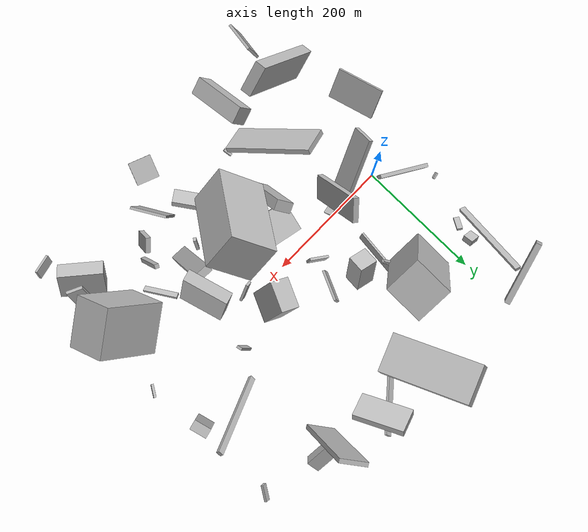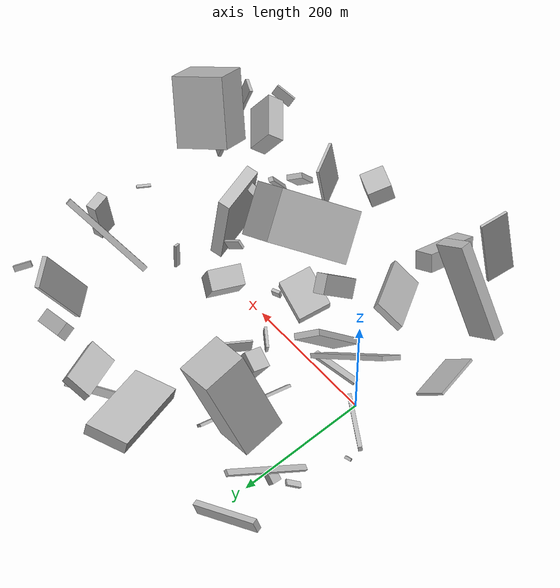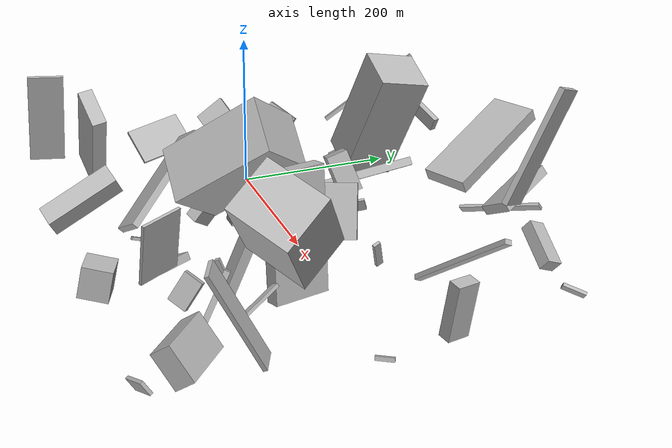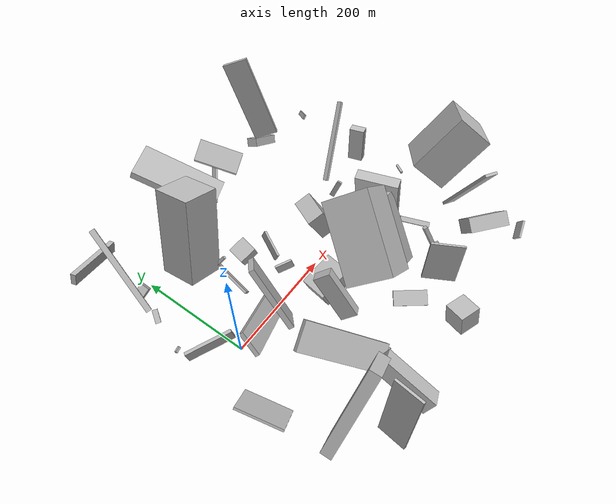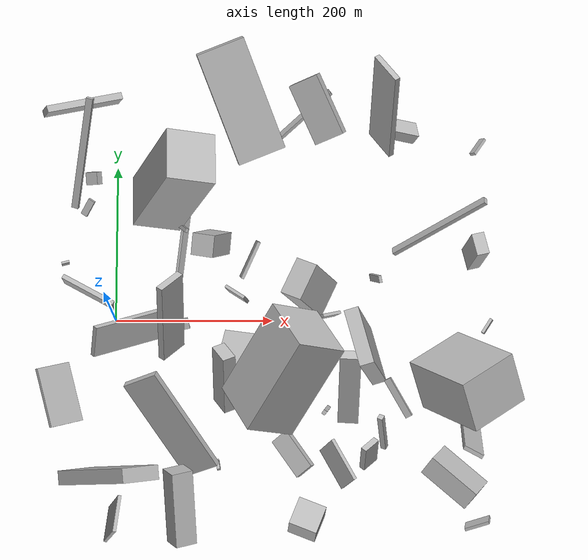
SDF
<sdf version="1.6">
 <world name="default">
  <scene>
   <sky><clouds><speed>12</speed></clouds></sky>
   <ambient>0.4 0.4 0.4 1</ambient>
   <background>0.7 0.7 0.7 1</background>
   <shadows>1</shadows>
  </scene>
  <gravity>0 0 -9.8066</gravity>
  <magnetic_field>6e-06 2.3e-05 -4.2e-05</magnetic_field>
  <physics default="0" name="default_physics" type="ode">
   <ode>
    <solver>
     <type>quick</type>
     <iters>10</iters>
     <sor>1.0</sor>
     <use_dynamic_moi_rescaling>0</use_dynamic_moi_rescaling>
    </solver>
    <constraints>
     <cfm>0</cfm>
     <erp>0.2</erp>
     <contact_max_correcting_vel>100</contact_max_correcting_vel>
     <contact_surface_layer>0.001</contact_surface_layer>
    </constraints>
   </ode>
   <max_step_size>0.004</max_step_size>
   <real_time_factor>1</real_time_factor>
   <real_time_update_rate>250</real_time_update_rate>
  </physics>
  <light name="sun" type="directional">
   <pose>0 0 10 0 0 0</pose>
   <diffuse>0.8 0.8 0.8 1</diffuse>
   <specular>0.2 0.2 0.2 1</specular>
   <attenuation>
    <range>1000</range>
    <constant>0.9</constant>
    <linear>0.01</linear>
    <quadratic>0.001</quadratic>
   </attenuation>
   <direction>-0.5 0.1 -0.9</direction>
  </light>
  <model name="building_1">
   <static>0</static>
   <pose>133.21272379555614 -72.60829885569004 51.48282670305865 0.94685586024266 0.3099676115791375 0.4106926930571434</pose>
   <link name="link">
    <gravity>0</gravity>
    <pose>0 0 14.5 0 0 0</pose>
    <collision name="collision"><geometry><box><size>17 88 29</size></box></geometry></collision>
    <visual name="visual">
     <cast_shadows>0</cast_shadows>
     <geometry><box><size>17 88 29</size></box></geometry>
     <material>
      <script>
       <uri>model://HANNAS_wall/materials/scripts</uri>
       <uri>model://HANNAS_wall/materials/textures</uri>
       <name>vrc/HANNAS_wall</name>
      </script>
     </material>
    </visual>
   </link>
  </model>
  <model name="building_2">
   <static>0</static>
   <pose>274.11569878097856 229.62726697184812 43.9098158511957 1.0166485205945737 -0.9874895511209203 -2.214056862766435</pose>
   <link name="link">
    <gravity>0</gravity>
    <pose>0 0 41.0 0 0 0</pose>
    <collision name="collision"><geometry><box><size>13 41 82</size></box></geometry></collision>
    <visual name="visual">
     <cast_shadows>0</cast_shadows>
     <geometry><box><size>13 41 82</size></box></geometry>
     <material>
      <script>
       <uri>model://HANNAS_wall/materials/scripts</uri>
       <uri>model://HANNAS_wall/materials/textures</uri>
       <name>vrc/HANNAS_wall</name>
      </script>
     </material>
    </visual>
   </link>
  </model>
  <model name="building_3">
   <static>0</static>
   <pose>266.04592356529054 -119.91651770280873 22.960512457103732 -0.11245648489854236 -1.2004729524846327 -2.0794519067387065</pose>
   <link name="link">
    <gravity>0</gravity>
    <pose>0 0 3.0 0 0 0</pose>
    <collision name="collision"><geometry><box><size>30 5 6</size></box></geometry></collision>
    <visual name="visual">
     <cast_shadows>0</cast_shadows>
     <geometry><box><size>30 5 6</size></box></geometry>
     <material>
      <script>
       <uri>model://HANNAS_wall/materials/scripts</uri>
       <uri>model://HANNAS_wall/materials/textures</uri>
       <name>vrc/HANNAS_wall</name>
      </script>
     </material>
    </visual>
   </link>
  </model>
  <model name="building_4">
   <static>0</static>
   <pose>-24.895404991316486 178.30561898894155 39.18046094572462 0.3518544050288584 -0.5846617767859117 -0.12815221044029654</pose>
   <link name="link">
    <gravity>0</gravity>
    <pose>0 0 5.0 0 0 0</pose>
    <collision name="collision"><geometry><box><size>18 16 10</size></box></geometry></collision>
    <visual name="visual">
     <cast_shadows>0</cast_shadows>
     <geometry><box><size>18 16 10</size></box></geometry>
     <material>
      <script>
       <uri>model://HANNAS_wall/materials/scripts</uri>
       <uri>model://HANNAS_wall/materials/textures</uri>
       <name>vrc/HANNAS_wall</name>
      </script>
     </material>
    </visual>
   </link>
  </model>
  <model name="building_5">
   <static>0</static>
   <pose>249.8623569323382 -238.77978267889736 24.613110011344812 1.3598794423644247 -0.044423129267968854 -0.37367421825245417</pose>
   <link name="link">
    <gravity>0</gravity>
    <pose>0 0 18.0 0 0 0</pose>
    <collision name="collision"><geometry><box><size>36 39 36</size></box></geometry></collision>
    <visual name="visual">
     <cast_shadows>0</cast_shadows>
     <geometry><box><size>36 39 36</size></box></geometry>
     <material>
      <script>
       <uri>model://HANNAS_wall/materials/scripts</uri>
       <uri>model://HANNAS_wall/materials/textures</uri>
       <name>vrc/HANNAS_wall</name>
      </script>
     </material>
    </visual>
   </link>
  </model>
  <model name="building_6">
   <static>0</static>
   <pose>455.4331705872142 209.8351635518881 40.04175155078613 -1.9632661994112903 0.5604833344140213 -0.7991754585519574</pose>
   <link name="link">
    <gravity>0</gravity>
    <pose>0 0 13.5 0 0 0</pose>
    <collision name="collision"><geometry><box><size>4 9 27</size></box></geometry></collision>
    <visual name="visual">
     <cast_shadows>0</cast_shadows>
     <geometry><box><size>4 9 27</size></box></geometry>
     <material>
      <script>
       <uri>model://HANNAS_wall/materials/scripts</uri>
       <uri>model://HANNAS_wall/materials/textures</uri>
       <name>vrc/HANNAS_wall</name>
      </script>
     </material>
    </visual>
   </link>
  </model>
  <model name="building_7">
   <static>0</static>
   <pose>235.78316788409631 10.448456748071237 62.22995655444545 1.5181267529020512 -1.11741165818731 2.749829916323924</pose>
   <link name="link">
    <gravity>0</gravity>
    <pose>0 0 24.0 0 0 0</pose>
    <collision name="collision"><geometry><box><size>67 30 48</size></box></geometry></collision>
    <visual name="visual">
     <cast_shadows>0</cast_shadows>
     <geometry><box><size>67 30 48</size></box></geometry>
     <material>
      <script>
       <uri>model://HANNAS_wall/materials/scripts</uri>
       <uri>model://HANNAS_wall/materials/textures</uri>
       <name>vrc/HANNAS_wall</name>
      </script>
     </material>
    </visual>
   </link>
  </model>
  <model name="building_8">
   <static>0</static>
   <pose>308.2952524903221 -96.40395004174822 71.61885104014831 1.6028856389273964 -0.41569108895059476 -1.6382814103078025</pose>
   <link name="link">
    <gravity>0</gravity>
    <pose>0 0 13.0 0 0 0</pose>
    <collision name="collision"><geometry><box><size>12 150 26</size></box></geometry></collision>
    <visual name="visual">
     <cast_shadows>0</cast_shadows>
     <geometry><box><size>12 150 26</size></box></geometry>
     <material>
      <script>
       <uri>model://HANNAS_wall/materials/scripts</uri>
       <uri>model://HANNAS_wall/materials/textures</uri>
       <name>vrc/HANNAS_wall</name>
      </script>
     </material>
    </visual>
   </link>
  </model>
  <model name="building_9">
   <static>0</static>
   <pose>-47.76156526672365 -95.41933585272469 34.283986708271904 0.19167401745038357 -0.8558008041303942 0.10202847238101537</pose>
   <link name="link">
    <gravity>0</gravity>
    <pose>0 0 25.0 0 0 0</pose>
    <collision name="collision"><geometry><box><size>4 75 50</size></box></geometry></collision>
    <visual name="visual">
     <cast_shadows>0</cast_shadows>
     <geometry><box><size>4 75 50</size></box></geometry>
     <material>
      <script>
       <uri>model://HANNAS_wall/materials/scripts</uri>
       <uri>model://HANNAS_wall/materials/textures</uri>
       <name>vrc/HANNAS_wall</name>
      </script>
     </material>
    </visual>
   </link>
  </model>
  <model name="building_10">
   <static>0</static>
   <pose>136.35339672130436 87.96266365665211 54.596652731162955 2.3592538560476153 -1.0910462099409288 -2.5177361705192056</pose>
   <link name="link">
    <gravity>0</gravity>
    <pose>0 0 15.0 0 0 0</pose>
    <collision name="collision"><geometry><box><size>54 28 30</size></box></geometry></collision>
    <visual name="visual">
     <cast_shadows>0</cast_shadows>
     <geometry><box><size>54 28 30</size></box></geometry>
     <material>
      <script>
       <uri>model://HANNAS_wall/materials/scripts</uri>
       <uri>model://HANNAS_wall/materials/textures</uri>
       <name>vrc/HANNAS_wall</name>
      </script>
     </material>
    </visual>
   </link>
  </model>
  <model name="building_11">
   <static>0</static>
   <pose>228.01738519784098 -170.8024354499402 14.855570301464109 -0.09683661114211456 -0.4827499898043357 0.6529324254956526</pose>
   <link name="link">
    <gravity>0</gravity>
    <pose>0 0 5.0 0 0 0</pose>
    <collision name="collision"><geometry><box><size>25 55 10</size></box></geometry></collision>
    <visual name="visual">
     <cast_shadows>0</cast_shadows>
     <geometry><box><size>25 55 10</size></box></geometry>
     <material>
      <script>
       <uri>model://HANNAS_wall/materials/scripts</uri>
       <uri>model://HANNAS_wall/materials/textures</uri>
       <name>vrc/HANNAS_wall</name>
      </script>
     </material>
    </visual>
   </link>
  </model>
  <model name="building_12">
   <static>0</static>
   <pose>336.2383802907886 -149.16767961036535 35.21151191545883 2.4609786540569654 -1.0669603923838096 1.7933198758681819</pose>
   <link name="link">
    <gravity>0</gravity>
    <pose>0 0 3.5 0 0 0</pose>
    <collision name="collision"><geometry><box><size>65 7 7</size></box></geometry></collision>
    <visual name="visual">
     <cast_shadows>0</cast_shadows>
     <geometry><box><size>65 7 7</size></box></geometry>
     <material>
      <script>
       <uri>model://HANNAS_wall/materials/scripts</uri>
       <uri>model://HANNAS_wall/materials/textures</uri>
       <name>vrc/HANNAS_wall</name>
      </script>
     </material>
    </visual>
   </link>
  </model>
  <model name="building_13">
   <static>0</static>
   <pose>85.76590258022085 3.923338607886352 69.59024546770176 1.0492583655565095 -0.38961575591352743 -0.6013533871746652</pose>
   <link name="link">
    <gravity>0</gravity>
    <pose>0 0 19.0 0 0 0</pose>
    <collision name="collision"><geometry><box><size>9 120 38</size></box></geometry></collision>
    <visual name="visual">
     <cast_shadows>0</cast_shadows>
     <geometry><box><size>9 120 38</size></box></geometry>
     <material>
      <script>
       <uri>model://HANNAS_wall/materials/scripts</uri>
       <uri>model://HANNAS_wall/materials/textures</uri>
       <name>vrc/HANNAS_wall</name>
      </script>
     </material>
    </visual>
   </link>
  </model>
  <model name="building_14">
   <static>0</static>
   <pose>409.4221068392276 105.19571424915148 68.2442944644551 -2.121861452540082 -0.662266959586186 0.39827850830056116</pose>
   <link name="link">
    <gravity>0</gravity>
    <pose>0 0 4.5 0 0 0</pose>
    <collision name="collision"><geometry><box><size>150 6 9</size></box></geometry></collision>
    <visual name="visual">
     <cast_shadows>0</cast_shadows>
     <geometry><box><size>150 6 9</size></box></geometry>
     <material>
      <script>
       <uri>model://HANNAS_wall/materials/scripts</uri>
       <uri>model://HANNAS_wall/materials/textures</uri>
       <name>vrc/HANNAS_wall</name>
      </script>
     </material>
    </visual>
   </link>
  </model>
  <model name="building_15">
   <static>0</static>
   <pose>357.4865096343658 -103.70542092316089 34.08362692330125 2.6477715439866483 -0.2469757244915664 2.113253534956214</pose>
   <link name="link">
    <gravity>0</gravity>
    <pose>0 0 2.0 0 0 0</pose>
    <collision name="collision"><geometry><box><size>55 9 4</size></box></geometry></collision>
    <visual name="visual">
     <cast_shadows>0</cast_shadows>
     <geometry><box><size>55 9 4</size></box></geometry>
     <material>
      <script>
       <uri>model://HANNAS_wall/materials/scripts</uri>
       <uri>model://HANNAS_wall/materials/textures</uri>
       <name>vrc/HANNAS_wall</name>
      </script>
     </material>
    </visual>
   </link>
  </model>
  <model name="building_16">
   <static>0</static>
   <pose>172.3643186248143 -26.00800410497003 33.29549879215835 -1.0780704962869856 -1.2083508712629198 2.4388553197419642</pose>
   <link name="link">
    <gravity>0</gravity>
    <pose>0 0 24.5 0 0 0</pose>
    <collision name="collision"><geometry><box><size>29 60 49</size></box></geometry></collision>
    <visual name="visual">
     <cast_shadows>0</cast_shadows>
     <geometry><box><size>29 60 49</size></box></geometry>
     <material>
      <script>
       <uri>model://HANNAS_wall/materials/scripts</uri>
       <uri>model://HANNAS_wall/materials/textures</uri>
       <name>vrc/HANNAS_wall</name>
      </script>
     </material>
    </visual>
   </link>
  </model>
  <model name="building_17">
   <static>0</static>
   <pose>92.85107333112602 127.23258439349536 20.49524042903421 0.22468578743578263 -0.5860112712187017 -0.2538476416880733</pose>
   <link name="link">
    <gravity>0</gravity>
    <pose>0 0 5.5 0 0 0</pose>
    <collision name="collision"><geometry><box><size>4 150 11</size></box></geometry></collision>
    <visual name="visual">
     <cast_shadows>0</cast_shadows>
     <geometry><box><size>4 150 11</size></box></geometry>
     <material>
      <script>
       <uri>model://HANNAS_wall/materials/scripts</uri>
       <uri>model://HANNAS_wall/materials/textures</uri>
       <name>vrc/HANNAS_wall</name>
      </script>
     </material>
    </visual>
   </link>
  </model>
  <model name="building_18">
   <static>0</static>
   <pose>79.62795366771573 -235.62164085026694 39.81913883712918 0.4603530240721446 -0.46284443428735983 1.6236272266281724</pose>
   <link name="link">
    <gravity>0</gravity>
    <pose>0 0 13.5 0 0 0</pose>
    <collision name="collision"><geometry><box><size>96 28 27</size></box></geometry></collision>
    <visual name="visual">
     <cast_shadows>0</cast_shadows>
     <geometry><box><size>96 28 27</size></box></geometry>
     <material>
      <script>
       <uri>model://HANNAS_wall/materials/scripts</uri>
       <uri>model://HANNAS_wall/materials/textures</uri>
       <name>vrc/HANNAS_wall</name>
      </script>
     </material>
    </visual>
   </link>
  </model>
  <model name="building_19">
   <static>0</static>
   <pose>456.8840674537515 -254.948231299063 18.64847911725089 0.3796735886482179 0.44096466251183686 -1.1280039485036908</pose>
   <link name="link">
    <gravity>0</gravity>
    <pose>0 0 8.5 0 0 0</pose>
    <collision name="collision"><geometry><box><size>4 32 17</size></box></geometry></collision>
    <visual name="visual">
     <cast_shadows>0</cast_shadows>
     <geometry><box><size>4 32 17</size></box></geometry>
     <material>
      <script>
       <uri>model://HANNAS_wall/materials/scripts</uri>
       <uri>model://HANNAS_wall/materials/textures</uri>
       <name>vrc/HANNAS_wall</name>
      </script>
     </material>
    </visual>
   </link>
  </model>
  <model name="building_20">
   <static>0</static>
   <pose>185.89884533600485 206.4683649976685 46.5799420111494 0.08855787961258046 -1.1475163391973302 -1.2723103623505068</pose>
   <link name="link">
    <gravity>0</gravity>
    <pose>0 0 75.0 0 0 0</pose>
    <collision name="collision"><geometry><box><size>17 63 150</size></box></geometry></collision>
    <visual name="visual">
     <cast_shadows>0</cast_shadows>
     <geometry><box><size>17 63 150</size></box></geometry>
     <material>
      <script>
       <uri>model://HANNAS_wall/materials/scripts</uri>
       <uri>model://HANNAS_wall/materials/textures</uri>
       <name>vrc/HANNAS_wall</name>
      </script>
     </material>
    </visual>
   </link>
  </model>
  <model name="building_21">
   <static>0</static>
   <pose>-32.55437228695615 156.1613781964105 9.259815647028507 -2.114468800472215 0.018011975117221926 2.5453544710303406</pose>
   <link name="link">
    <gravity>0</gravity>
    <pose>0 0 11.5 0 0 0</pose>
    <collision name="collision"><geometry><box><size>9 4 23</size></box></geometry></collision>
    <visual name="visual">
     <cast_shadows>0</cast_shadows>
     <geometry><box><size>9 4 23</size></box></geometry>
     <material>
      <script>
       <uri>model://HANNAS_wall/materials/scripts</uri>
       <uri>model://HANNAS_wall/materials/textures</uri>
       <name>vrc/HANNAS_wall</name>
      </script>
     </material>
    </visual>
   </link>
  </model>
  <model name="building_22">
   <static>0</static>
   <pose>460.66428610319616 70.08180272173723 39.62755168351636 -2.004036201067158 -1.4478040806707562 0.6737938088688296</pose>
   <link name="link">
    <gravity>0</gravity>
    <pose>0 0 14.0 0 0 0</pose>
    <collision name="collision"><geometry><box><size>69 16 28</size></box></geometry></collision>
    <visual name="visual">
     <cast_shadows>0</cast_shadows>
     <geometry><box><size>69 16 28</size></box></geometry>
     <material>
      <script>
       <uri>model://HANNAS_wall/materials/scripts</uri>
       <uri>model://HANNAS_wall/materials/textures</uri>
       <name>vrc/HANNAS_wall</name>
      </script>
     </material>
    </visual>
   </link>
  </model>
  <model name="building_23">
   <static>0</static>
   <pose>181.11472922786925 -128.64925995860668 97.12582609884721 0.767403946241375 -0.6723402820700808 3.118668621846242</pose>
   <link name="link">
    <gravity>0</gravity>
    <pose>0 0 67.0 0 0 0</pose>
    <collision name="collision"><geometry><box><size>69 77 134</size></box></geometry></collision>
    <visual name="visual">
     <cast_shadows>0</cast_shadows>
     <geometry><box><size>69 77 134</size></box></geometry>
     <material>
      <script>
       <uri>model://HANNAS_wall/materials/scripts</uri>
       <uri>model://HANNAS_wall/materials/textures</uri>
       <name>vrc/HANNAS_wall</name>
      </script>
     </material>
    </visual>
   </link>
  </model>
  <model name="building_24">
   <static>0</static>
   <pose>-1.595076662481027 -197.48970867779028 92.85634574805233 1.8113634352547467 -0.9379900284139846 -0.10573860897272214</pose>
   <link name="link">
    <gravity>0</gravity>
    <pose>0 0 9.0 0 0 0</pose>
    <collision name="collision"><geometry><box><size>150 51 18</size></box></geometry></collision>
    <visual name="visual">
     <cast_shadows>0</cast_shadows>
     <geometry><box><size>150 51 18</size></box></geometry>
     <material>
      <script>
       <uri>model://HANNAS_wall/materials/scripts</uri>
       <uri>model://HANNAS_wall/materials/textures</uri>
       <name>vrc/HANNAS_wall</name>
      </script>
     </material>
    </visual>
   </link>
  </model>
  <model name="building_25">
   <static>0</static>
   <pose>404.57341542363713 -80.32248885722092 121.1046841952957 0.6619286340431669 0.31428043113428533 0.5914555950769066</pose>
   <link name="link">
    <gravity>0</gravity>
    <pose>0 0 52.0 0 0 0</pose>
    <collision name="collision"><geometry><box><size>77 65 104</size></box></geometry></collision>
    <visual name="visual">
     <cast_shadows>0</cast_shadows>
     <geometry><box><size>77 65 104</size></box></geometry>
     <material>
      <script>
       <uri>model://HANNAS_wall/materials/scripts</uri>
       <uri>model://HANNAS_wall/materials/textures</uri>
       <name>vrc/HANNAS_wall</name>
      </script>
     </material>
    </visual>
   </link>
  </model>
  <model name="building_26">
   <static>0</static>
   <pose>133.7185241833065 -184.52896576157104 9.485227705008182 1.999093058112063 1.1416633287196842 -0.9300179584350898</pose>
   <link name="link">
    <gravity>0</gravity>
    <pose>0 0 2.0 0 0 0</pose>
    <collision name="collision"><geometry><box><size>4 14 4</size></box></geometry></collision>
    <visual name="visual">
     <cast_shadows>0</cast_shadows>
     <geometry><box><size>4 14 4</size></box></geometry>
     <material>
      <script>
       <uri>model://HANNAS_wall/materials/scripts</uri>
       <uri>model://HANNAS_wall/materials/textures</uri>
       <name>vrc/HANNAS_wall</name>
      </script>
     </material>
    </visual>
   </link>
  </model>
  <model name="building_27">
   <static>0</static>
   <pose>75.88177323057802 192.11399463065732 96.86561029272515 1.0367157824247666 -1.183648739250881 0.5186581388770877</pose>
   <link name="link">
    <gravity>0</gravity>
    <pose>0 0 33.0 0 0 0</pose>
    <collision name="collision"><geometry><box><size>150 62 66</size></box></geometry></collision>
    <visual name="visual">
     <cast_shadows>0</cast_shadows>
     <geometry><box><size>150 62 66</size></box></geometry>
     <material>
      <script>
       <uri>model://HANNAS_wall/materials/scripts</uri>
       <uri>model://HANNAS_wall/materials/textures</uri>
       <name>vrc/HANNAS_wall</name>
      </script>
     </material>
    </visual>
   </link>
  </model>
  <model name="building_28">
   <static>0</static>
   <pose>82.66550509134501 119.43323635513867 37.68304061384701 1.9604855205744602 0.533171854836345 -0.16582562636176493</pose>
   <link name="link">
    <gravity>0</gravity>
    <pose>0 0 2.5 0 0 0</pose>
    <collision name="collision"><geometry><box><size>4 49 5</size></box></geometry></collision>
    <visual name="visual">
     <cast_shadows>0</cast_shadows>
     <geometry><box><size>4 49 5</size></box></geometry>
     <material>
      <script>
       <uri>model://HANNAS_wall/materials/scripts</uri>
       <uri>model://HANNAS_wall/materials/textures</uri>
       <name>vrc/HANNAS_wall</name>
      </script>
     </material>
    </visual>
   </link>
  </model>
  <model name="building_29">
   <static>0</static>
   <pose>294.0940623141183 -214.97227770581495 74.69316554144233 1.5363384777885338 -0.16872513654788182 -2.620610524954124</pose>
   <link name="link">
    <gravity>0</gravity>
    <pose>0 0 27.5 0 0 0</pose>
    <collision name="collision"><geometry><box><size>4 78 55</size></box></geometry></collision>
    <visual name="visual">
     <cast_shadows>0</cast_shadows>
     <geometry><box><size>4 78 55</size></box></geometry>
     <material>
      <script>
       <uri>model://HANNAS_wall/materials/scripts</uri>
       <uri>model://HANNAS_wall/materials/textures</uri>
       <name>vrc/HANNAS_wall</name>
      </script>
     </material>
    </visual>
   </link>
  </model>
  <model name="building_30">
   <static>0</static>
   <pose>-45.34900275723177 267.8174625735079 52.27180514867387 0.3866856266086716 -0.011893451842388218 1.873651221138345</pose>
   <link name="link">
    <gravity>0</gravity>
    <pose>0 0 9.5 0 0 0</pose>
    <collision name="collision"><geometry><box><size>9 103 19</size></box></geometry></collision>
    <visual name="visual">
     <cast_shadows>0</cast_shadows>
     <geometry><box><size>9 103 19</size></box></geometry>
     <material>
      <script>
       <uri>model://HANNAS_wall/materials/scripts</uri>
       <uri>model://HANNAS_wall/materials/textures</uri>
       <name>vrc/HANNAS_wall</name>
      </script>
     </material>
    </visual>
   </link>
  </model>
  <model name="building_31">
   <static>0</static>
   <pose>153.5759657909967 30.050750607063776 18.90479663538241 1.5223139593701058 0.25714244820445015 2.5371911027143565</pose>
   <link name="link">
    <gravity>0</gravity>
    <pose>0 0 2.0 0 0 0</pose>
    <collision name="collision"><geometry><box><size>30 22 4</size></box></geometry></collision>
    <visual name="visual">
     <cast_shadows>0</cast_shadows>
     <geometry><box><size>30 22 4</size></box></geometry>
     <material>
      <script>
       <uri>model://HANNAS_wall/materials/scripts</uri>
       <uri>model://HANNAS_wall/materials/textures</uri>
       <name>vrc/HANNAS_wall</name>
      </script>
     </material>
    </visual>
   </link>
  </model>
  <model name="building_32">
   <static>0</static>
   <pose>332.0633070486061 47.83982166499898 45.16841022321475 1.3408930333184994 0.322370297554623 -1.3583567974898265</pose>
   <link name="link">
    <gravity>0</gravity>
    <pose>0 0 2.0 0 0 0</pose>
    <collision name="collision"><geometry><box><size>9 35 4</size></box></geometry></collision>
    <visual name="visual">
     <cast_shadows>0</cast_shadows>
     <geometry><box><size>9 35 4</size></box></geometry>
     <material>
      <script>
       <uri>model://HANNAS_wall/materials/scripts</uri>
       <uri>model://HANNAS_wall/materials/textures</uri>
       <name>vrc/HANNAS_wall</name>
      </script>
     </material>
    </visual>
   </link>
  </model>
  <model name="building_33">
   <static>0</static>
   <pose>-0.9158484277313228 -264.977416044198 73.67628576809732 0.057583032784541625 -0.1617971348776735 2.9998469071135445</pose>
   <link name="link">
    <gravity>0</gravity>
    <pose>0 0 59.0 0 0 0</pose>
    <collision name="collision"><geometry><box><size>4 43 118</size></box></geometry></collision>
    <visual name="visual">
     <cast_shadows>0</cast_shadows>
     <geometry><box><size>4 43 118</size></box></geometry>
     <material>
      <script>
       <uri>model://HANNAS_wall/materials/scripts</uri>
       <uri>model://HANNAS_wall/materials/textures</uri>
       <name>vrc/HANNAS_wall</name>
      </script>
     </material>
    </visual>
   </link>
  </model>
  <model name="building_34">
   <static>0</static>
   <pose>233.1080746610601 261.2292310004773 23.29463433736263 -2.7311075836042455 -0.8540893109592173 -1.1913883016928724</pose>
   <link name="link">
    <gravity>0</gravity>
    <pose>0 0 2.0 0 0 0</pose>
    <collision name="collision"><geometry><box><size>12 107 4</size></box></geometry></collision>
    <visual name="visual">
     <cast_shadows>0</cast_shadows>
     <geometry><box><size>12 107 4</size></box></geometry>
     <material>
      <script>
       <uri>model://HANNAS_wall/materials/scripts</uri>
       <uri>model://HANNAS_wall/materials/textures</uri>
       <name>vrc/HANNAS_wall</name>
      </script>
     </material>
    </visual>
   </link>
  </model>
  <model name="building_35">
   <static>0</static>
   <pose>173.01989249728 74.46658109204095 24.105701426935966 0.7316256889888859 -1.2043762868125405 -1.1409032412074636</pose>
   <link name="link">
    <gravity>0</gravity>
    <pose>0 0 2.0 0 0 0</pose>
    <collision name="collision"><geometry><box><size>16 51 4</size></box></geometry></collision>
    <visual name="visual">
     <cast_shadows>0</cast_shadows>
     <geometry><box><size>16 51 4</size></box></geometry>
     <material>
      <script>
       <uri>model://HANNAS_wall/materials/scripts</uri>
       <uri>model://HANNAS_wall/materials/textures</uri>
       <name>vrc/HANNAS_wall</name>
      </script>
     </material>
    </visual>
   </link>
  </model>
  <model name="building_36">
   <static>0</static>
   <pose>32.523838834695006 -24.95574960108675 70.9986197688631 2.321006783270463 -0.5886920357044539 -2.7490363286476946</pose>
   <link name="link">
    <gravity>0</gravity>
    <pose>0 0 3.5 0 0 0</pose>
    <collision name="collision"><geometry><box><size>129 40 7</size></box></geometry></collision>
    <visual name="visual">
     <cast_shadows>0</cast_shadows>
     <geometry><box><size>129 40 7</size></box></geometry>
     <material>
      <script>
       <uri>model://HANNAS_wall/materials/scripts</uri>
       <uri>model://HANNAS_wall/materials/textures</uri>
       <name>vrc/HANNAS_wall</name>
      </script>
     </material>
    </visual>
   </link>
  </model>
  <model name="building_37">
   <static>0</static>
   <pose>305.86971598597444 -11.828136641266667 80.25725204470737 1.5185474342248952 -0.1396299058320785 0.27531484388906063</pose>
   <link name="link">
    <gravity>0</gravity>
    <pose>0 0 35.5 0 0 0</pose>
    <collision name="collision"><geometry><box><size>18 150 71</size></box></geometry></collision>
    <visual name="visual">
     <cast_shadows>0</cast_shadows>
     <geometry><box><size>18 150 71</size></box></geometry>
     <material>
      <script>
       <uri>model://HANNAS_wall/materials/scripts</uri>
       <uri>model://HANNAS_wall/materials/textures</uri>
       <name>vrc/HANNAS_wall</name>
      </script>
     </material>
    </visual>
   </link>
  </model>
  <model name="building_38">
   <static>0</static>
   <pose>209.99532558527116 -36.85870154884967 7.433608864276943 1.6497165249632417 -0.19285787607005817 -2.8302599200555423</pose>
   <link name="link">
    <gravity>0</gravity>
    <pose>0 0 2.5 0 0 0</pose>
    <collision name="collision"><geometry><box><size>13 11 5</size></box></geometry></collision>
    <visual name="visual">
     <cast_shadows>0</cast_shadows>
     <geometry><box><size>13 11 5</size></box></geometry>
     <material>
      <script>
       <uri>model://HANNAS_wall/materials/scripts</uri>
       <uri>model://HANNAS_wall/materials/textures</uri>
       <name>vrc/HANNAS_wall</name>
      </script>
     </material>
    </visual>
   </link>
  </model>
  <model name="building_39">
   <static>0</static>
   <pose>420.23891017252186 -210.78330544707276 26.95799639761811 0.9449448051503676 0.025272438843627926 2.431966820335929</pose>
   <link name="link">
    <gravity>0</gravity>
    <pose>0 0 13.0 0 0 0</pose>
    <collision name="collision"><geometry><box><size>70 45 26</size></box></geometry></collision>
    <visual name="visual">
     <cast_shadows>0</cast_shadows>
     <geometry><box><size>70 45 26</size></box></geometry>
     <material>
      <script>
       <uri>model://HANNAS_wall/materials/scripts</uri>
       <uri>model://HANNAS_wall/materials/textures</uri>
       <name>vrc/HANNAS_wall</name>
      </script>
     </material>
    </visual>
   </link>
  </model>
  <model name="building_40">
   <static>0</static>
   <pose>353.60485542154726 241.14999285506764 26.218082259297795 0.46463846289633953 -0.485515202153549 3.0723723769087714</pose>
   <link name="link">
    <gravity>0</gravity>
    <pose>0 0 8.0 0 0 0</pose>
    <collision name="collision"><geometry><box><size>58 22 16</size></box></geometry></collision>
    <visual name="visual">
     <cast_shadows>0</cast_shadows>
     <geometry><box><size>58 22 16</size></box></geometry>
     <material>
      <script>
       <uri>model://HANNAS_wall/materials/scripts</uri>
       <uri>model://HANNAS_wall/materials/textures</uri>
       <name>vrc/HANNAS_wall</name>
      </script>
     </material>
    </visual>
   </link>
  </model>
  <model name="building_41">
   <static>0</static>
   <pose>336.6164018177506 211.7289934424689 83.28914615604353 0.359831491933915 -0.2323046434322933 -2.6137783257297493</pose>
   <link name="link">
    <gravity>0</gravity>
    <pose>0 0 73.5 0 0 0</pose>
    <collision name="collision"><geometry><box><size>7 44 147</size></box></geometry></collision>
    <visual name="visual">
     <cast_shadows>0</cast_shadows>
     <geometry><box><size>7 44 147</size></box></geometry>
     <material>
      <script>
       <uri>model://HANNAS_wall/materials/scripts</uri>
       <uri>model://HANNAS_wall/materials/textures</uri>
       <name>vrc/HANNAS_wall</name>
      </script>
     </material>
    </visual>
   </link>
  </model>
  <model name="building_42">
   <static>0</static>
   <pose>258.5111059155633 -11.473048891423074 97.82561591272412 2.226195139876213 -0.05429236227851763 1.8563225164064074</pose>
   <link name="link">
    <gravity>0</gravity>
    <pose>0 0 14.5 0 0 0</pose>
    <collision name="collision"><geometry><box><size>4 14 29</size></box></geometry></collision>
    <visual name="visual">
     <cast_shadows>0</cast_shadows>
     <geometry><box><size>4 14 29</size></box></geometry>
     <material>
      <script>
       <uri>model://HANNAS_wall/materials/scripts</uri>
       <uri>model://HANNAS_wall/materials/textures</uri>
       <name>vrc/HANNAS_wall</name>
      </script>
     </material>
    </visual>
   </link>
  </model>
  <model name="building_43">
   <static>0</static>
   <pose>317.6593271544783 -171.8945632042047 36.753121692260265 1.1670835378571587 0.4373132284707922 0.7242359027063948</pose>
   <link name="link">
    <gravity>0</gravity>
    <pose>0 0 4.0 0 0 0</pose>
    <collision name="collision"><geometry><box><size>24 37 8</size></box></geometry></collision>
    <visual name="visual">
     <cast_shadows>0</cast_shadows>
     <geometry><box><size>24 37 8</size></box></geometry>
     <material>
      <script>
       <uri>model://HANNAS_wall/materials/scripts</uri>
       <uri>model://HANNAS_wall/materials/textures</uri>
       <name>vrc/HANNAS_wall</name>
      </script>
     </material>
    </visual>
   </link>
  </model>
  <model name="building_44">
   <static>0</static>
   <pose>-30.691248457100308 29.47812137359323 22.55685822518932 -0.21670823859862914 0.11019144531730846 1.0245719792922237</pose>
   <link name="link">
    <gravity>0</gravity>
    <pose>0 0 9.5 0 0 0</pose>
    <collision name="collision"><geometry><box><size>6 78 19</size></box></geometry></collision>
    <visual name="visual">
     <cast_shadows>0</cast_shadows>
     <geometry><box><size>6 78 19</size></box></geometry>
     <material>
      <script>
       <uri>model://HANNAS_wall/materials/scripts</uri>
       <uri>model://HANNAS_wall/materials/textures</uri>
       <name>vrc/HANNAS_wall</name>
      </script>
     </material>
    </visual>
   </link>
  </model>
  <model name="building_45">
   <static>0</static>
   <pose>73.84781785662378 -142.71688541627367 57.81142997621062 2.485477032403302 0.5229741364569762 -2.8789321942064823</pose>
   <link name="link">
    <gravity>0</gravity>
    <pose>0 0 4.5 0 0 0</pose>
    <collision name="collision"><geometry><box><size>47 150 9</size></box></geometry></collision>
    <visual name="visual">
     <cast_shadows>0</cast_shadows>
     <geometry><box><size>47 150 9</size></box></geometry>
     <material>
      <script>
       <uri>model://HANNAS_wall/materials/scripts</uri>
       <uri>model://HANNAS_wall/materials/textures</uri>
       <name>vrc/HANNAS_wall</name>
      </script>
     </material>
    </visual>
   </link>
  </model>
  <model name="building_46">
   <static>0</static>
   <pose>-68.86583546427728 69.97004540862439 20.383957087488852 1.6065812219817954 0.595791190873837 1.8500664277619792</pose>
   <link name="link">
    <gravity>0</gravity>
    <pose>0 0 5.0 0 0 0</pose>
    <collision name="collision"><geometry><box><size>4 4 10</size></box></geometry></collision>
    <visual name="visual">
     <cast_shadows>0</cast_shadows>
     <geometry><box><size>4 4 10</size></box></geometry>
     <material>
      <script>
       <uri>model://HANNAS_wall/materials/scripts</uri>
       <uri>model://HANNAS_wall/materials/textures</uri>
       <name>vrc/HANNAS_wall</name>
      </script>
     </material>
    </visual>
   </link>
  </model>
  <model name="building_47">
   <static>0</static>
   <pose>456.6454719585231 -160.24092655255757 72.21651307517752 1.1765619157052212 -1.1190203406077908 -1.6812258433469853</pose>
   <link name="link">
    <gravity>0</gravity>
    <pose>0 0 13.0 0 0 0</pose>
    <collision name="collision"><geometry><box><size>129 5 26</size></box></geometry></collision>
    <visual name="visual">
     <cast_shadows>0</cast_shadows>
     <geometry><box><size>129 5 26</size></box></geometry>
     <material>
      <script>
       <uri>model://HANNAS_wall/materials/scripts</uri>
       <uri>model://HANNAS_wall/materials/textures</uri>
       <name>vrc/HANNAS_wall</name>
      </script>
     </material>
    </visual>
   </link>
  </model>
  <model name="building_48">
   <static>0</static>
   <pose>-49.92696654220926 137.0506788678362 51.27850336826402 -0.9248819797552509 -0.1731081708750158 -0.3302635402593574</pose>
   <link name="link">
    <gravity>0</gravity>
    <pose>0 0 75.0 0 0 0</pose>
    <collision name="collision"><geometry><box><size>9 5 150</size></box></geometry></collision>
    <visual name="visual">
     <cast_shadows>0</cast_shadows>
     <geometry><box><size>9 5 150</size></box></geometry>
     <material>
      <script>
       <uri>model://HANNAS_wall/materials/scripts</uri>
       <uri>model://HANNAS_wall/materials/textures</uri>
       <name>vrc/HANNAS_wall</name>
      </script>
     </material>
    </visual>
   </link>
  </model>
  <model name="building_49">
   <static>0</static>
   <pose>23.565456049770937 -20.40478500608822 11.982525880198304 1.4766600071559086 -0.47530923043971773 1.8245855818416095</pose>
   <link name="link">
    <gravity>0</gravity>
    <pose>0 0 36.0 0 0 0</pose>
    <collision name="collision"><geometry><box><size>14 4 72</size></box></geometry></collision>
    <visual name="visual">
     <cast_shadows>0</cast_shadows>
     <geometry><box><size>14 4 72</size></box></geometry>
     <material>
      <script>
       <uri>model://HANNAS_wall/materials/scripts</uri>
       <uri>model://HANNAS_wall/materials/textures</uri>
       <name>vrc/HANNAS_wall</name>
      </script>
     </material>
    </visual>
   </link>
  </model>
  <model name="building_50">
   <static>0</static>
   <pose>467.8902949125704 -16.554445052357277 8.324602222068357 -1.5526710464070452 -0.2765751588905994 -0.5766839527760191</pose>
   <link name="link">
    <gravity>0</gravity>
    <pose>0 0 10.5 0 0 0</pose>
    <collision name="collision"><geometry><box><size>4 5 21</size></box></geometry></collision>
    <visual name="visual">
     <cast_shadows>0</cast_shadows>
     <geometry><box><size>4 5 21</size></box></geometry>
     <material>
      <script>
       <uri>model://HANNAS_wall/materials/scripts</uri>
       <uri>model://HANNAS_wall/materials/textures</uri>
       <name>vrc/HANNAS_wall</name>
      </script>
     </material>
    </visual>
   </link>
  </model>
 </world>
</sdf>
